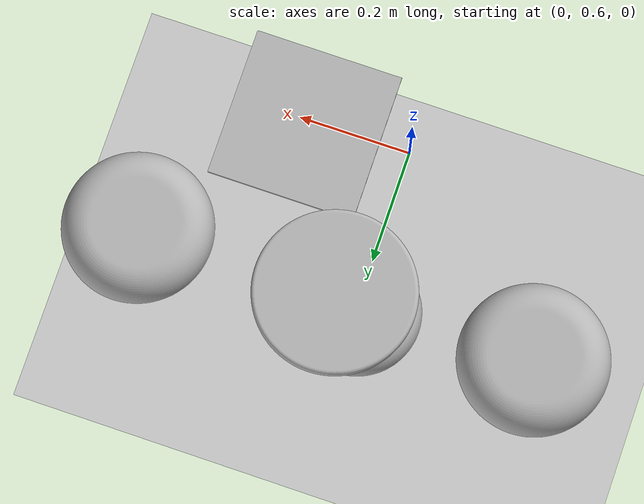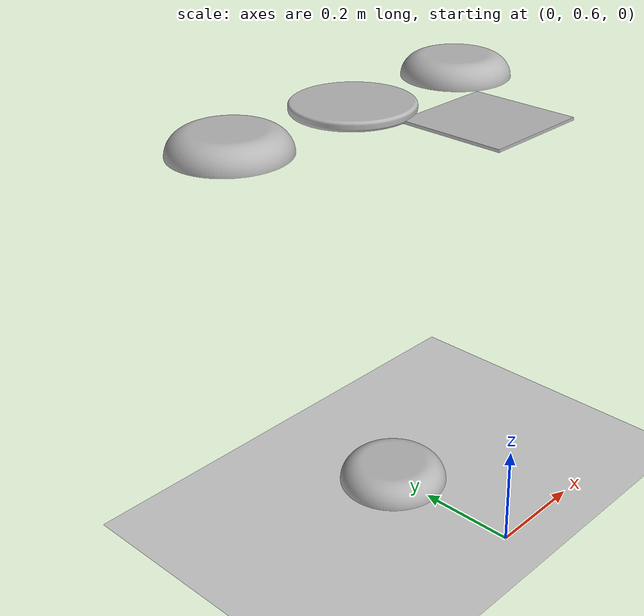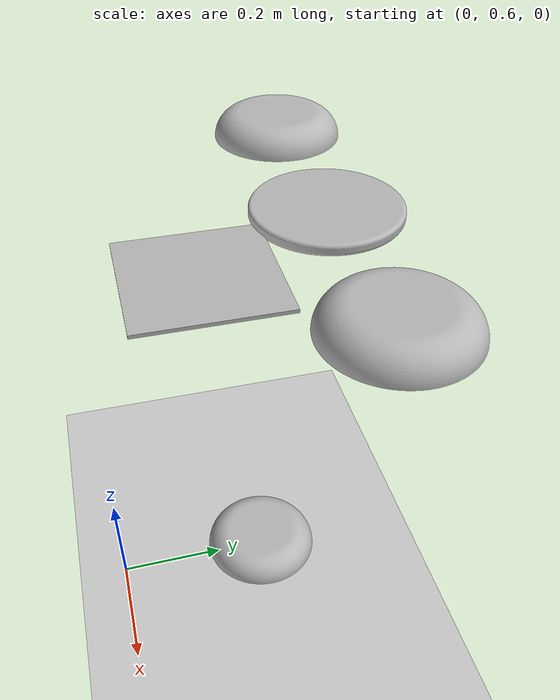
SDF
<sdf version="1.4">
 <world name="default">
  <include><uri>model://ground_plane</uri></include>
  <include><uri>model://sun</uri></include>
  <model name="Top Bun">
   <pose>-.3 1 .78  0 0 0</pose>
   <static>true</static>
   <link name="body">
    <visual name="visual">
     <geometry><mesh><uri>file://Bun_v1.stl</uri><scale>0.005 0.005 0.005</scale></mesh></geometry>
    </visual>
    <collision name="col">
     <geometry><mesh><uri>file://Bun_v1.stl</uri><scale>0.005 0.005 0.005</scale></mesh></geometry>
    </collision>
   </link>
  </model>
  <model name="burger_v1">
   <pose>0 1 .78  0 0 0</pose>
   <static>true</static>
   <link name="body">
    <visual name="visual">
     <geometry><mesh><uri>file://burger_v1.stl</uri><scale>0.005 0.005 0.005</scale></mesh></geometry>
    </visual>
   </link>
  </model>
  <model name="Bottom_Bun">
   <pose>.3 1 .78  0 0 0</pose>
   <static>true</static>
   <link name="body">
    <visual name="visual">
     <geometry><mesh><uri>file://Bun_v1.stl</uri><scale>0.005 0.005 0.005</scale></mesh></geometry>
    </visual>
   </link>
  </model>
  <model name="Cheese_slice">
   <pose>.2 .7 .78  0 0 0</pose>
   <static>true</static>
   <link name="body">
    <visual name="visual">
     <geometry><mesh><uri>file://cheese_v3.stl</uri><scale>0.005 0.005 0.005</scale></mesh></geometry>
    </visual>
   </link>
  </model>
  <model name="cafe_table_clone">
   <static>1</static>
   <link name="link">
    <collision name="surface">
     <pose>0 0 0.755 0 -0 0</pose>
     <geometry><box><size>0.913 0.913 0.04</size></box></geometry>
    </collision>
    <collision name="column">
     <pose>0 0 0.37 0 -0 0</pose>
     <geometry><box><size>0.042 0.042 0.74</size></box></geometry>
    </collision>
    <collision name="base">
     <pose>0 0 0.02 0 -0 0</pose>
     <geometry><box><size>0.56 0.56 0.04</size></box></geometry>
    </collision>
    <visual name="visual">
     <geometry><mesh><uri>file://Bun_v1.dae</uri><scale>0.005 0.005 0.005</scale></mesh></geometry>
    </visual>
   </link>
   <pose>-0.003051 0.891537 0 0 -0 0</pose>
  </model>
 </world>
</sdf>
